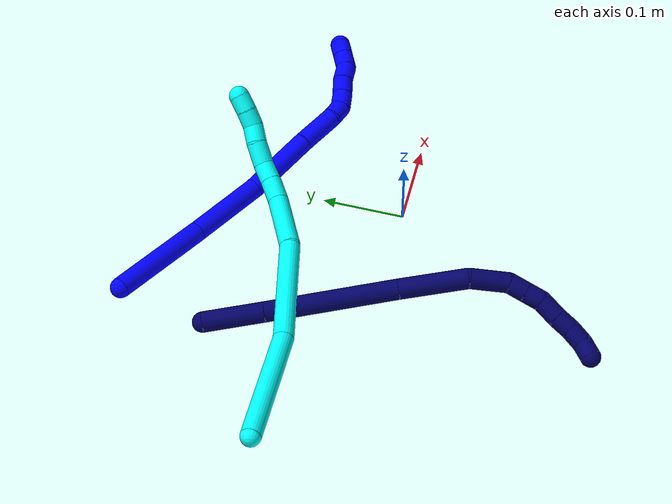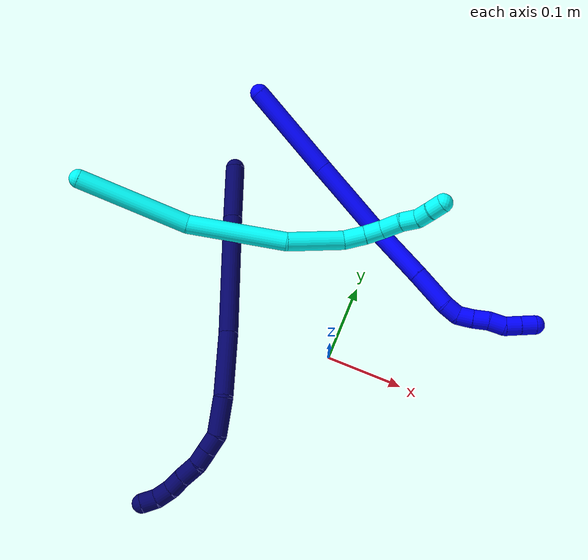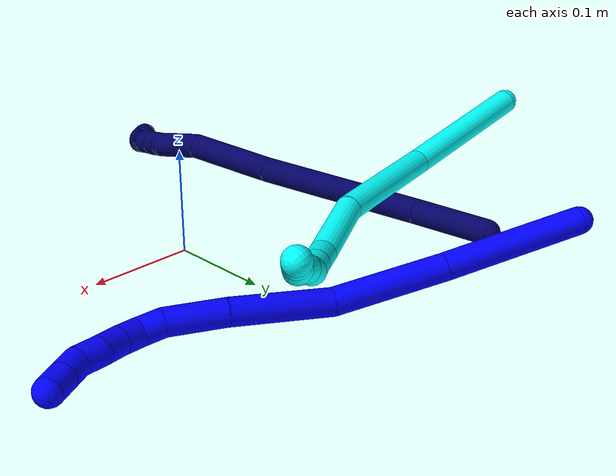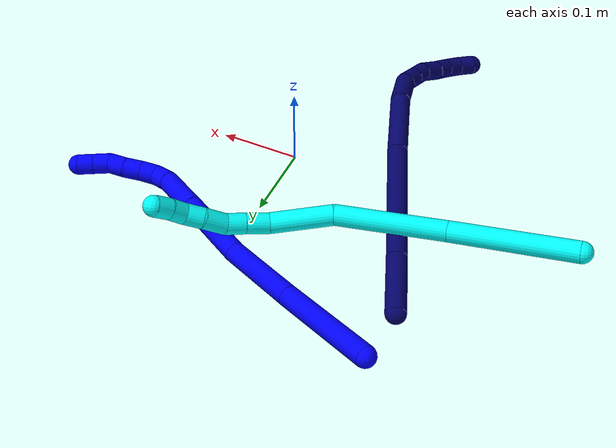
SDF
<sdf version="1.7">
 <world name="default">
  <model name="1">
   <static>0</static>
   <link name="1">
    <collision name="collision-cylinder-e_1_1_4">
     <pose>0.032249 -0.010098 -0.055538 2.96174 0.519046 2.48681</pose>
     <geometry><cylinder><radius>0.0125</radius><length>0.130023</length></cylinder></geometry>
     <surface>
      <friction><ode><mu>1.16</mu><mu2>1.16</mu2><slip1>0</slip1><slip2>0</slip2></ode></friction>
      <contact><ode><kp>1e+06</kp><kd>1</kd><max_vel>0</max_vel><min_depth>0.001</min_depth></ode></contact>
     </surface>
    </collision>
    <visual name="visual-cylinder-e_1_1_4">
     <pose>0.032249 -0.010098 -0.055538 2.96174 0.519046 2.48681</pose>
     <geometry><cylinder><radius>0.0125</radius><length>0.130023</length></cylinder></geometry>
     <material><ambient>0 0 1 1</ambient></material>
    </visual>
    <collision name="collision-cylinder-e_2_4_5">
     <pose>0.088818 -0.029358 -0.155503 2.93822 0.492142 2.36981</pose>
     <geometry><cylinder><radius>0.0125</radius><length>0.102939</length></cylinder></geometry>
     <surface>
      <friction><ode><mu>1.16</mu><mu2>1.16</mu2><slip1>0</slip1><slip2>0</slip2></ode></friction>
      <contact><ode><kp>1e+06</kp><kd>1</kd><max_vel>0</max_vel><min_depth>0.001</min_depth></ode></contact>
     </surface>
    </collision>
    <visual name="visual-cylinder-e_2_4_5">
     <pose>0.088818 -0.029358 -0.155503 2.93822 0.492142 2.36981</pose>
     <geometry><cylinder><radius>0.0125</radius><length>0.102939</length></cylinder></geometry>
     <material><ambient>0 0 1 1</ambient></material>
    </visual>
    <collision name="collision-cylinder-e_3_5_6">
     <pose>0.126631 -0.052566 -0.240502 2.80829 0.304481 1.47895</pose>
     <geometry><cylinder><radius>0.0125</radius><length>0.09001</length></cylinder></geometry>
     <surface>
      <friction><ode><mu>1.16</mu><mu2>1.16</mu2><slip1>0</slip1><slip2>0</slip2></ode></friction>
      <contact><ode><kp>1e+06</kp><kd>1</kd><max_vel>0</max_vel><min_depth>0.001</min_depth></ode></contact>
     </surface>
    </collision>
    <visual name="visual-cylinder-e_3_5_6">
     <pose>0.126631 -0.052566 -0.240502 2.80829 0.304481 1.47895</pose>
     <geometry><cylinder><radius>0.0125</radius><length>0.09001</length></cylinder></geometry>
     <material><ambient>0 0 1 1</ambient></material>
    </visual>
    <collision name="collision-cylinder-e_4_6_7">
     <pose>0.149401 -0.073584 -0.304795 2.85575 0.358994 1.80059</pose>
     <geometry><cylinder><radius>0.0125</radius><length>0.052816</length></cylinder></geometry>
     <surface>
      <friction><ode><mu>1.16</mu><mu2>1.16</mu2><slip1>0</slip1><slip2>0</slip2></ode></friction>
      <contact><ode><kp>1e+06</kp><kd>1</kd><max_vel>0</max_vel><min_depth>0.001</min_depth></ode></contact>
     </surface>
    </collision>
    <visual name="visual-cylinder-e_4_6_7">
     <pose>0.149401 -0.073584 -0.304795 2.85575 0.358994 1.80059</pose>
     <geometry><cylinder><radius>0.0125</radius><length>0.052816</length></cylinder></geometry>
     <material><ambient>0 0 1 1</ambient></material>
    </visual>
    <collision name="collision-cylinder-e_5_7_8">
     <pose>0.164653 -0.083733 -0.336788 2.77488 0.593164 2.05076</pose>
     <geometry><cylinder><radius>0.0125</radius><length>0.021373</length></cylinder></geometry>
     <surface>
      <friction><ode><mu>1.16</mu><mu2>1.16</mu2><slip1>0</slip1><slip2>0</slip2></ode></friction>
      <contact><ode><kp>1e+06</kp><kd>1</kd><max_vel>0</max_vel><min_depth>0.001</min_depth></ode></contact>
     </surface>
    </collision>
    <visual name="visual-cylinder-e_5_7_8">
     <pose>0.164653 -0.083733 -0.336788 2.77488 0.593164 2.05076</pose>
     <geometry><cylinder><radius>0.0125</radius><length>0.021373</length></cylinder></geometry>
     <material><ambient>0 0 1 1</ambient></material>
    </visual>
    <collision name="collision-cylinder-e_6_8_9">
     <pose>0.176046 -0.093928 -0.350155 2.19879 0.558534 1.02489</pose>
     <geometry><cylinder><radius>0.0125</radius><length>0.020455</length></cylinder></geometry>
     <surface>
      <friction><ode><mu>1.16</mu><mu2>1.16</mu2><slip1>0</slip1><slip2>0</slip2></ode></friction>
      <contact><ode><kp>1e+06</kp><kd>1</kd><max_vel>0</max_vel><min_depth>0.001</min_depth></ode></contact>
     </surface>
    </collision>
    <visual name="visual-cylinder-e_6_8_9">
     <pose>0.176046 -0.093928 -0.350155 2.19879 0.558534 1.02489</pose>
     <geometry><cylinder><radius>0.0125</radius><length>0.020455</length></cylinder></geometry>
     <material><ambient>0 0 1 1</ambient></material>
    </visual>
    <collision name="collision-cylinder-e_7_9_10">
     <pose>0.187081 -0.10854 -0.359414 2.07233 0.575223 0.92658</pose>
     <geometry><cylinder><radius>0.0125</radius><length>0.020641</length></cylinder></geometry>
     <surface>
      <friction><ode><mu>1.16</mu><mu2>1.16</mu2><slip1>0</slip1><slip2>0</slip2></ode></friction>
      <contact><ode><kp>1e+06</kp><kd>1</kd><max_vel>0</max_vel><min_depth>0.001</min_depth></ode></contact>
     </surface>
    </collision>
    <visual name="visual-cylinder-e_7_9_10">
     <pose>0.187081 -0.10854 -0.359414 2.07233 0.575223 0.92658</pose>
     <geometry><cylinder><radius>0.0125</radius><length>0.020641</length></cylinder></geometry>
     <material><ambient>0 0 1 1</ambient></material>
    </visual>
    <collision name="collision-cylinder-e_8_10_11">
     <pose>0.198848 -0.122548 -0.369611 2.32548 0.609813 1.25852</pose>
     <geometry><cylinder><radius>0.0125</radius><length>0.021486</length></cylinder></geometry>
     <surface>
      <friction><ode><mu>1.16</mu><mu2>1.16</mu2><slip1>0</slip1><slip2>0</slip2></ode></friction>
      <contact><ode><kp>1e+06</kp><kd>1</kd><max_vel>0</max_vel><min_depth>0.001</min_depth></ode></contact>
     </surface>
    </collision>
    <visual name="visual-cylinder-e_8_10_11">
     <pose>0.198848 -0.122548 -0.369611 2.32548 0.609813 1.25852</pose>
     <geometry><cylinder><radius>0.0125</radius><length>0.021486</length></cylinder></geometry>
     <material><ambient>0 0 1 1</ambient></material>
    </visual>
    <collision name="collision-cylinder-e_9_11_12">
     <pose>0.21184 -0.136151 -0.377579 1.83385 0.743139 0.940828</pose>
     <geometry><cylinder><radius>0.0125</radius><length>0.020216</length></cylinder></geometry>
     <surface>
      <friction><ode><mu>1.16</mu><mu2>1.16</mu2><slip1>0</slip1><slip2>0</slip2></ode></friction>
      <contact><ode><kp>1e+06</kp><kd>1</kd><max_vel>0</max_vel><min_depth>0.001</min_depth></ode></contact>
     </surface>
    </collision>
    <visual name="visual-cylinder-e_9_11_12">
     <pose>0.21184 -0.136151 -0.377579 1.83385 0.743139 0.940828</pose>
     <geometry><cylinder><radius>0.0125</radius><length>0.020216</length></cylinder></geometry>
     <material><ambient>0 0 1 1</ambient></material>
    </visual>
    <collision name="collision-cylinder-e_10_12_2">
     <pose>0.225478 -0.150438 -0.381457 1.83785 0.745704 0.947253</pose>
     <geometry><cylinder><radius>0.0125</radius><length>0.020042</length></cylinder></geometry>
     <surface>
      <friction><ode><mu>1.16</mu><mu2>1.16</mu2><slip1>0</slip1><slip2>0</slip2></ode></friction>
      <contact><ode><kp>1e+06</kp><kd>1</kd><max_vel>0</max_vel><min_depth>0.001</min_depth></ode></contact>
     </surface>
    </collision>
    <visual name="visual-cylinder-e_10_12_2">
     <pose>0.225478 -0.150438 -0.381457 1.83785 0.745704 0.947253</pose>
     <geometry><cylinder><radius>0.0125</radius><length>0.020042</length></cylinder></geometry>
     <material><ambient>0 0 1 1</ambient></material>
    </visual>
    <collision name="collision-sphere-2">
     <pose>0.232277 -0.157539 -0.3834 0 -0 0</pose>
     <geometry><sphere><radius>0.0125</radius></sphere></geometry>
     <surface>
      <friction><ode><mu>1.16</mu><mu2>1.16</mu2><slip1>0</slip1><slip2>0</slip2></ode></friction>
      <contact><ode><kp>1e+06</kp><kd>1</kd><max_vel>0</max_vel><min_depth>0.001</min_depth></ode></contact>
     </surface>
    </collision>
    <visual name="visual-sphere-2">
     <pose>0.232277 -0.157539 -0.3834 0 -0 0</pose>
     <geometry><sphere><radius>0.0125</radius></sphere></geometry>
     <material><ambient>0 0 1 1</ambient></material>
    </visual>
    <collision name="collision-sphere-12">
     <pose>0.218679 -0.143338 -0.379515 0 -0 0</pose>
     <geometry><sphere><radius>0.0125</radius></sphere></geometry>
     <surface>
      <friction><ode><mu>1.16</mu><mu2>1.16</mu2><slip1>0</slip1><slip2>0</slip2></ode></friction>
      <contact><ode><kp>1e+06</kp><kd>1</kd><max_vel>0</max_vel><min_depth>0.001</min_depth></ode></contact>
     </surface>
    </collision>
    <visual name="visual-sphere-12">
     <pose>0.218679 -0.143338 -0.379515 0 -0 0</pose>
     <geometry><sphere><radius>0.0125</radius></sphere></geometry>
     <material><ambient>0 0 1 1</ambient></material>
    </visual>
    <collision name="collision-sphere-11">
     <pose>0.205 -0.128964 -0.375644 0 -0 0</pose>
     <geometry><sphere><radius>0.0125</radius></sphere></geometry>
     <surface>
      <friction><ode><mu>1.16</mu><mu2>1.16</mu2><slip1>0</slip1><slip2>0</slip2></ode></friction>
      <contact><ode><kp>1e+06</kp><kd>1</kd><max_vel>0</max_vel><min_depth>0.001</min_depth></ode></contact>
     </surface>
    </collision>
    <visual name="visual-sphere-11">
     <pose>0.205 -0.128964 -0.375644 0 -0 0</pose>
     <geometry><sphere><radius>0.0125</radius></sphere></geometry>
     <material><ambient>0 0 1 1</ambient></material>
    </visual>
    <collision name="collision-sphere-10">
     <pose>0.192695 -0.116133 -0.363578 0 -0 0</pose>
     <geometry><sphere><radius>0.0125</radius></sphere></geometry>
     <surface>
      <friction><ode><mu>1.16</mu><mu2>1.16</mu2><slip1>0</slip1><slip2>0</slip2></ode></friction>
      <contact><ode><kp>1e+06</kp><kd>1</kd><max_vel>0</max_vel><min_depth>0.001</min_depth></ode></contact>
     </surface>
    </collision>
    <visual name="visual-sphere-10">
     <pose>0.192695 -0.116133 -0.363578 0 -0 0</pose>
     <geometry><sphere><radius>0.0125</radius></sphere></geometry>
     <material><ambient>0 0 1 1</ambient></material>
    </visual>
    <collision name="collision-sphere-9">
     <pose>0.181466 -0.100947 -0.355251 0 -0 0</pose>
     <geometry><sphere><radius>0.0125</radius></sphere></geometry>
     <surface>
      <friction><ode><mu>1.16</mu><mu2>1.16</mu2><slip1>0</slip1><slip2>0</slip2></ode></friction>
      <contact><ode><kp>1e+06</kp><kd>1</kd><max_vel>0</max_vel><min_depth>0.001</min_depth></ode></contact>
     </surface>
    </collision>
    <visual name="visual-sphere-9">
     <pose>0.181466 -0.100947 -0.355251 0 -0 0</pose>
     <geometry><sphere><radius>0.0125</radius></sphere></geometry>
     <material><ambient>0 0 1 1</ambient></material>
    </visual>
    <collision name="collision-sphere-4">
     <pose>0.064498 -0.020196 -0.111077 0 -0 0</pose>
     <geometry><sphere><radius>0.0125</radius></sphere></geometry>
     <surface>
      <friction><ode><mu>1.16</mu><mu2>1.16</mu2><slip1>0</slip1><slip2>0</slip2></ode></friction>
      <contact><ode><kp>1e+06</kp><kd>1</kd><max_vel>0</max_vel><min_depth>0.001</min_depth></ode></contact>
     </surface>
    </collision>
    <visual name="visual-sphere-4">
     <pose>0.064498 -0.020196 -0.111077 0 -0 0</pose>
     <geometry><sphere><radius>0.0125</radius></sphere></geometry>
     <material><ambient>0 0 1 1</ambient></material>
    </visual>
    <collision name="collision-sphere-1">
     <geometry><sphere><radius>0.0125</radius></sphere></geometry>
     <surface>
      <friction><ode><mu>1.16</mu><mu2>1.16</mu2><slip1>0</slip1><slip2>0</slip2></ode></friction>
      <contact><ode><kp>1e+06</kp><kd>1</kd><max_vel>0</max_vel><min_depth>0.001</min_depth></ode></contact>
     </surface>
    </collision>
    <visual name="visual-sphere-1">
     <geometry><sphere><radius>0.0125</radius></sphere></geometry>
     <material><ambient>0 0 1 1</ambient></material>
    </visual>
    <collision name="collision-sphere-8">
     <pose>0.170626 -0.08691 -0.34506 0 -0 0</pose>
     <geometry><sphere><radius>0.0125</radius></sphere></geometry>
     <surface>
      <friction><ode><mu>1.16</mu><mu2>1.16</mu2><slip1>0</slip1><slip2>0</slip2></ode></friction>
      <contact><ode><kp>1e+06</kp><kd>1</kd><max_vel>0</max_vel><min_depth>0.001</min_depth></ode></contact>
     </surface>
    </collision>
    <visual name="visual-sphere-8">
     <pose>0.170626 -0.08691 -0.34506 0 -0 0</pose>
     <geometry><sphere><radius>0.0125</radius></sphere></geometry>
     <material><ambient>0 0 1 1</ambient></material>
    </visual>
    <collision name="collision-sphere-5">
     <pose>0.113138 -0.038519 -0.19993 0 -0 0</pose>
     <geometry><sphere><radius>0.0125</radius></sphere></geometry>
     <surface>
      <friction><ode><mu>1.16</mu><mu2>1.16</mu2><slip1>0</slip1><slip2>0</slip2></ode></friction>
      <contact><ode><kp>1e+06</kp><kd>1</kd><max_vel>0</max_vel><min_depth>0.001</min_depth></ode></contact>
     </surface>
    </collision>
    <visual name="visual-sphere-5">
     <pose>0.113138 -0.038519 -0.19993 0 -0 0</pose>
     <geometry><sphere><radius>0.0125</radius></sphere></geometry>
     <material><ambient>0 0 1 1</ambient></material>
    </visual>
    <collision name="collision-sphere-6">
     <pose>0.140123 -0.066613 -0.281074 0 -0 0</pose>
     <geometry><sphere><radius>0.0125</radius></sphere></geometry>
     <surface>
      <friction><ode><mu>1.16</mu><mu2>1.16</mu2><slip1>0</slip1><slip2>0</slip2></ode></friction>
      <contact><ode><kp>1e+06</kp><kd>1</kd><max_vel>0</max_vel><min_depth>0.001</min_depth></ode></contact>
     </surface>
    </collision>
    <visual name="visual-sphere-6">
     <pose>0.140123 -0.066613 -0.281074 0 -0 0</pose>
     <geometry><sphere><radius>0.0125</radius></sphere></geometry>
     <material><ambient>0 0 1 1</ambient></material>
    </visual>
    <collision name="collision-sphere-7">
     <pose>0.158679 -0.080556 -0.328516 0 -0 0</pose>
     <geometry><sphere><radius>0.0125</radius></sphere></geometry>
     <surface>
      <friction><ode><mu>1.16</mu><mu2>1.16</mu2><slip1>0</slip1><slip2>0</slip2></ode></friction>
      <contact><ode><kp>1e+06</kp><kd>1</kd><max_vel>0</max_vel><min_depth>0.001</min_depth></ode></contact>
     </surface>
    </collision>
    <visual name="visual-sphere-7">
     <pose>0.158679 -0.080556 -0.328516 0 -0 0</pose>
     <geometry><sphere><radius>0.0125</radius></sphere></geometry>
     <material><ambient>0 0 1 1</ambient></material>
    </visual>
    <inertial>
     <pose>0.113361 -0.054609 -0.211946 0 -0 0</pose>
     <mass>0.5</mass>
     <inertia>
      <ixx>7.2e-05</ixx>
      <ixy>0</ixy>
      <ixz>0</ixz>
      <iyy>0.000464</iyy>
      <iyz>0</iyz>
      <izz>-0.000122</izz>
     </inertia>
    </inertial>
   </link>
   <pose>-0.215986 0.28825 0.054127 -1.72462 0.873658 0.527533</pose>
  </model>
  <model name="3">
   <static>0</static>
   <link name="3">
    <collision name="collision-cylinder-e_1_1_4">
     <pose>0.000195 -0.006128 -0.074844 3.0599 0.002603 0.063677</pose>
     <geometry><cylinder><radius>0.0125</radius><length>0.15019</length></cylinder></geometry>
     <surface>
      <friction><ode><mu>1.16</mu><mu2>1.16</mu2><slip1>0</slip1><slip2>0</slip2></ode></friction>
      <contact><ode><kp>1e+06</kp><kd>1</kd><max_vel>0</max_vel><min_depth>0.001</min_depth></ode></contact>
     </surface>
    </collision>
    <visual name="visual-cylinder-e_1_1_4">
     <pose>0.000195 -0.006128 -0.074844 3.0599 0.002603 0.063677</pose>
     <geometry><cylinder><radius>0.0125</radius><length>0.15019</length></cylinder></geometry>
     <material><ambient>0.003922 1 0.996078 1</ambient></material>
    </visual>
    <collision name="collision-cylinder-e_2_4_5">
     <pose>0.015043 -0.010166 -0.213482 -3.10885 0.225639 -2.85458</pose>
     <geometry><cylinder><radius>0.0125</radius><length>0.130976</length></cylinder></geometry>
     <surface>
      <friction><ode><mu>1.16</mu><mu2>1.16</mu2><slip1>0</slip1><slip2>0</slip2></ode></friction>
      <contact><ode><kp>1e+06</kp><kd>1</kd><max_vel>0</max_vel><min_depth>0.001</min_depth></ode></contact>
     </surface>
    </collision>
    <visual name="visual-cylinder-e_2_4_5">
     <pose>0.015043 -0.010166 -0.213482 -3.10885 0.225639 -2.85458</pose>
     <geometry><cylinder><radius>0.0125</radius><length>0.130976</length></cylinder></geometry>
     <material><ambient>0.003922 1 0.996078 1</ambient></material>
    </visual>
    <collision name="collision-cylinder-e_3_5_6">
     <pose>0.036055 0.00338 -0.312587 -2.82785 0.16969 -0.986697</pose>
     <geometry><cylinder><radius>0.0125</radius><length>0.075328</length></cylinder></geometry>
     <surface>
      <friction><ode><mu>1.16</mu><mu2>1.16</mu2><slip1>0</slip1><slip2>0</slip2></ode></friction>
      <contact><ode><kp>1e+06</kp><kd>1</kd><max_vel>0</max_vel><min_depth>0.001</min_depth></ode></contact>
     </surface>
    </collision>
    <visual name="visual-cylinder-e_3_5_6">
     <pose>0.036055 0.00338 -0.312587 -2.82785 0.16969 -0.986697</pose>
     <geometry><cylinder><radius>0.0125</radius><length>0.075328</length></cylinder></geometry>
     <material><ambient>0.003922 1 0.996078 1</ambient></material>
    </visual>
    <collision name="collision-cylinder-e_4_6_7">
     <pose>0.049287 0.019445 -0.359772 -2.77143 0.494771 -1.86576</pose>
     <geometry><cylinder><radius>0.0125</radius><length>0.028945</length></cylinder></geometry>
     <surface>
      <friction><ode><mu>1.16</mu><mu2>1.16</mu2><slip1>0</slip1><slip2>0</slip2></ode></friction>
      <contact><ode><kp>1e+06</kp><kd>1</kd><max_vel>0</max_vel><min_depth>0.001</min_depth></ode></contact>
     </surface>
    </collision>
    <visual name="visual-cylinder-e_4_6_7">
     <pose>0.049287 0.019445 -0.359772 -2.77143 0.494771 -1.86576</pose>
     <geometry><cylinder><radius>0.0125</radius><length>0.028945</length></cylinder></geometry>
     <material><ambient>0.003922 1 0.996078 1</ambient></material>
    </visual>
    <collision name="collision-cylinder-e_5_7_8">
     <pose>0.06229 0.028352 -0.380814 -2.70305 0.544442 -1.79415</pose>
     <geometry><cylinder><radius>0.0125</radius><length>0.023674</length></cylinder></geometry>
     <surface>
      <friction><ode><mu>1.16</mu><mu2>1.16</mu2><slip1>0</slip1><slip2>0</slip2></ode></friction>
      <contact><ode><kp>1e+06</kp><kd>1</kd><max_vel>0</max_vel><min_depth>0.001</min_depth></ode></contact>
     </surface>
    </collision>
    <visual name="visual-cylinder-e_5_7_8">
     <pose>0.06229 0.028352 -0.380814 -2.70305 0.544442 -1.79415</pose>
     <geometry><cylinder><radius>0.0125</radius><length>0.023674</length></cylinder></geometry>
     <material><ambient>0.003922 1 0.996078 1</ambient></material>
    </visual>
    <collision name="collision-cylinder-e_6_8_9">
     <pose>0.079318 0.035052 -0.398754 -2.87446 0.875307 -2.58233</pose>
     <geometry><cylinder><radius>0.0125</radius><length>0.028387</length></cylinder></geometry>
     <surface>
      <friction><ode><mu>1.16</mu><mu2>1.16</mu2><slip1>0</slip1><slip2>0</slip2></ode></friction>
      <contact><ode><kp>1e+06</kp><kd>1</kd><max_vel>0</max_vel><min_depth>0.001</min_depth></ode></contact>
     </surface>
    </collision>
    <visual name="visual-cylinder-e_6_8_9">
     <pose>0.079318 0.035052 -0.398754 -2.87446 0.875307 -2.58233</pose>
     <geometry><cylinder><radius>0.0125</radius><length>0.028387</length></cylinder></geometry>
     <material><ambient>0.003922 1 0.996078 1</ambient></material>
    </visual>
    <collision name="collision-cylinder-e_7_9_10">
     <pose>0.097423 0.038885 -0.415951 -2.97324 0.700629 -2.68771</pose>
     <geometry><cylinder><radius>0.0125</radius><length>0.022359</length></cylinder></geometry>
     <surface>
      <friction><ode><mu>1.16</mu><mu2>1.16</mu2><slip1>0</slip1><slip2>0</slip2></ode></friction>
      <contact><ode><kp>1e+06</kp><kd>1</kd><max_vel>0</max_vel><min_depth>0.001</min_depth></ode></contact>
     </surface>
    </collision>
    <visual name="visual-cylinder-e_7_9_10">
     <pose>0.097423 0.038885 -0.415951 -2.97324 0.700629 -2.68771</pose>
     <geometry><cylinder><radius>0.0125</radius><length>0.022359</length></cylinder></geometry>
     <material><ambient>0.003922 1 0.996078 1</ambient></material>
    </visual>
    <collision name="collision-cylinder-e_8_10_11">
     <pose>0.11341 0.042269 -0.428884 -2.73296 1.06076 -2.46229</pose>
     <geometry><cylinder><radius>0.0125</radius><length>0.02012</length></cylinder></geometry>
     <surface>
      <friction><ode><mu>1.16</mu><mu2>1.16</mu2><slip1>0</slip1><slip2>0</slip2></ode></friction>
      <contact><ode><kp>1e+06</kp><kd>1</kd><max_vel>0</max_vel><min_depth>0.001</min_depth></ode></contact>
     </surface>
    </collision>
    <visual name="visual-cylinder-e_8_10_11">
     <pose>0.11341 0.042269 -0.428884 -2.73296 1.06076 -2.46229</pose>
     <geometry><cylinder><radius>0.0125</radius><length>0.02012</length></cylinder></geometry>
     <material><ambient>0.003922 1 0.996078 1</ambient></material>
    </visual>
    <collision name="collision-cylinder-e_9_11_2">
     <pose>0.130461 0.04707 -0.438254 -2.6115 0.972602 -2.1929</pose>
     <geometry><cylinder><radius>0.0125</radius><length>0.02002</length></cylinder></geometry>
     <surface>
      <friction><ode><mu>1.16</mu><mu2>1.16</mu2><slip1>0</slip1><slip2>0</slip2></ode></friction>
      <contact><ode><kp>1e+06</kp><kd>1</kd><max_vel>0</max_vel><min_depth>0.001</min_depth></ode></contact>
     </surface>
    </collision>
    <visual name="visual-cylinder-e_9_11_2">
     <pose>0.130461 0.04707 -0.438254 -2.6115 0.972602 -2.1929</pose>
     <geometry><cylinder><radius>0.0125</radius><length>0.02002</length></cylinder></geometry>
     <material><ambient>0.003922 1 0.996078 1</ambient></material>
    </visual>
    <collision name="collision-sphere-2">
     <pose>0.138733 0.049921 -0.443118 0 -0 0</pose>
     <geometry><sphere><radius>0.0125</radius></sphere></geometry>
     <surface>
      <friction><ode><mu>1.16</mu><mu2>1.16</mu2><slip1>0</slip1><slip2>0</slip2></ode></friction>
      <contact><ode><kp>1e+06</kp><kd>1</kd><max_vel>0</max_vel><min_depth>0.001</min_depth></ode></contact>
     </surface>
    </collision>
    <visual name="visual-sphere-2">
     <pose>0.138733 0.049921 -0.443118 0 -0 0</pose>
     <geometry><sphere><radius>0.0125</radius></sphere></geometry>
     <material><ambient>0.003922 1 0.996078 1</ambient></material>
    </visual>
    <collision name="collision-sphere-11">
     <pose>0.12219 0.04422 -0.433391 0 -0 0</pose>
     <geometry><sphere><radius>0.0125</radius></sphere></geometry>
     <surface>
      <friction><ode><mu>1.16</mu><mu2>1.16</mu2><slip1>0</slip1><slip2>0</slip2></ode></friction>
      <contact><ode><kp>1e+06</kp><kd>1</kd><max_vel>0</max_vel><min_depth>0.001</min_depth></ode></contact>
     </surface>
    </collision>
    <visual name="visual-sphere-11">
     <pose>0.12219 0.04422 -0.433391 0 -0 0</pose>
     <geometry><sphere><radius>0.0125</radius></sphere></geometry>
     <material><ambient>0.003922 1 0.996078 1</ambient></material>
    </visual>
    <collision name="collision-sphere-10">
     <pose>0.10463 0.040317 -0.424376 0 -0 0</pose>
     <geometry><sphere><radius>0.0125</radius></sphere></geometry>
     <surface>
      <friction><ode><mu>1.16</mu><mu2>1.16</mu2><slip1>0</slip1><slip2>0</slip2></ode></friction>
      <contact><ode><kp>1e+06</kp><kd>1</kd><max_vel>0</max_vel><min_depth>0.001</min_depth></ode></contact>
     </surface>
    </collision>
    <visual name="visual-sphere-10">
     <pose>0.10463 0.040317 -0.424376 0 -0 0</pose>
     <geometry><sphere><radius>0.0125</radius></sphere></geometry>
     <material><ambient>0.003922 1 0.996078 1</ambient></material>
    </visual>
    <collision name="collision-sphere-9">
     <pose>0.090215 0.037453 -0.407526 0 -0 0</pose>
     <geometry><sphere><radius>0.0125</radius></sphere></geometry>
     <surface>
      <friction><ode><mu>1.16</mu><mu2>1.16</mu2><slip1>0</slip1><slip2>0</slip2></ode></friction>
      <contact><ode><kp>1e+06</kp><kd>1</kd><max_vel>0</max_vel><min_depth>0.001</min_depth></ode></contact>
     </surface>
    </collision>
    <visual name="visual-sphere-9">
     <pose>0.090215 0.037453 -0.407526 0 -0 0</pose>
     <geometry><sphere><radius>0.0125</radius></sphere></geometry>
     <material><ambient>0.003922 1 0.996078 1</ambient></material>
    </visual>
    <collision name="collision-sphere-4">
     <pose>0.000391 -0.012256 -0.149688 0 -0 0</pose>
     <geometry><sphere><radius>0.0125</radius></sphere></geometry>
     <surface>
      <friction><ode><mu>1.16</mu><mu2>1.16</mu2><slip1>0</slip1><slip2>0</slip2></ode></friction>
      <contact><ode><kp>1e+06</kp><kd>1</kd><max_vel>0</max_vel><min_depth>0.001</min_depth></ode></contact>
     </surface>
    </collision>
    <visual name="visual-sphere-4">
     <pose>0.000391 -0.012256 -0.149688 0 -0 0</pose>
     <geometry><sphere><radius>0.0125</radius></sphere></geometry>
     <material><ambient>0.003922 1 0.996078 1</ambient></material>
    </visual>
    <collision name="collision-sphere-1">
     <geometry><sphere><radius>0.0125</radius></sphere></geometry>
     <surface>
      <friction><ode><mu>1.16</mu><mu2>1.16</mu2><slip1>0</slip1><slip2>0</slip2></ode></friction>
      <contact><ode><kp>1e+06</kp><kd>1</kd><max_vel>0</max_vel><min_depth>0.001</min_depth></ode></contact>
     </surface>
    </collision>
    <visual name="visual-sphere-1">
     <geometry><sphere><radius>0.0125</radius></sphere></geometry>
     <material><ambient>0.003922 1 0.996078 1</ambient></material>
    </visual>
    <collision name="collision-sphere-8">
     <pose>0.068421 0.032652 -0.389982 0 -0 0</pose>
     <geometry><sphere><radius>0.0125</radius></sphere></geometry>
     <surface>
      <friction><ode><mu>1.16</mu><mu2>1.16</mu2><slip1>0</slip1><slip2>0</slip2></ode></friction>
      <contact><ode><kp>1e+06</kp><kd>1</kd><max_vel>0</max_vel><min_depth>0.001</min_depth></ode></contact>
     </surface>
    </collision>
    <visual name="visual-sphere-8">
     <pose>0.068421 0.032652 -0.389982 0 -0 0</pose>
     <geometry><sphere><radius>0.0125</radius></sphere></geometry>
     <material><ambient>0.003922 1 0.996078 1</ambient></material>
    </visual>
    <collision name="collision-sphere-5">
     <pose>0.029694 -0.008077 -0.277276 0 -0 0</pose>
     <geometry><sphere><radius>0.0125</radius></sphere></geometry>
     <surface>
      <friction><ode><mu>1.16</mu><mu2>1.16</mu2><slip1>0</slip1><slip2>0</slip2></ode></friction>
      <contact><ode><kp>1e+06</kp><kd>1</kd><max_vel>0</max_vel><min_depth>0.001</min_depth></ode></contact>
     </surface>
    </collision>
    <visual name="visual-sphere-5">
     <pose>0.029694 -0.008077 -0.277276 0 -0 0</pose>
     <geometry><sphere><radius>0.0125</radius></sphere></geometry>
     <material><ambient>0.003922 1 0.996078 1</ambient></material>
    </visual>
    <collision name="collision-sphere-6">
     <pose>0.042415 0.014837 -0.347898 0 -0 0</pose>
     <geometry><sphere><radius>0.0125</radius></sphere></geometry>
     <surface>
      <friction><ode><mu>1.16</mu><mu2>1.16</mu2><slip1>0</slip1><slip2>0</slip2></ode></friction>
      <contact><ode><kp>1e+06</kp><kd>1</kd><max_vel>0</max_vel><min_depth>0.001</min_depth></ode></contact>
     </surface>
    </collision>
    <visual name="visual-sphere-6">
     <pose>0.042415 0.014837 -0.347898 0 -0 0</pose>
     <geometry><sphere><radius>0.0125</radius></sphere></geometry>
     <material><ambient>0.003922 1 0.996078 1</ambient></material>
    </visual>
    <collision name="collision-sphere-7">
     <pose>0.056159 0.024053 -0.371647 0 -0 0</pose>
     <geometry><sphere><radius>0.0125</radius></sphere></geometry>
     <surface>
      <friction><ode><mu>1.16</mu><mu2>1.16</mu2><slip1>0</slip1><slip2>0</slip2></ode></friction>
      <contact><ode><kp>1e+06</kp><kd>1</kd><max_vel>0</max_vel><min_depth>0.001</min_depth></ode></contact>
     </surface>
    </collision>
    <visual name="visual-sphere-7">
     <pose>0.056159 0.024053 -0.371647 0 -0 0</pose>
     <geometry><sphere><radius>0.0125</radius></sphere></geometry>
     <material><ambient>0.003922 1 0.996078 1</ambient></material>
    </visual>
    <inertial>
     <pose>0.033881 0.005788 -0.240401 0 -0 0</pose>
     <mass>0.5</mass>
     <inertia>
      <ixx>6.1e-05</ixx>
      <ixy>0</ixy>
      <ixz>0</ixz>
      <iyy>-0.000181</iyy>
      <iyz>0</iyz>
      <izz>-9.1e-05</izz>
     </inertia>
    </inertial>
   </link>
   <pose>-0.380052 0.081928 0.078475 -0.975523 -1.15866 1.12043</pose>
  </model>
  <model name="7">
   <static>0</static>
   <link name="7">
    <collision name="collision-cylinder-e_1_1_4">
     <pose>-0.011383 -0.022196 0.027636 0.676653 -0.310731 -0.110109</pose>
     <geometry><cylinder><radius>0.0125</radius><length>0.074457</length></cylinder></geometry>
     <surface>
      <friction><ode><mu>1.16</mu><mu2>1.16</mu2><slip1>0</slip1><slip2>0</slip2></ode></friction>
      <contact><ode><kp>1e+06</kp><kd>1</kd><max_vel>0</max_vel><min_depth>0.001</min_depth></ode></contact>
     </surface>
    </collision>
    <visual name="visual-cylinder-e_1_1_4">
     <pose>-0.011383 -0.022196 0.027636 0.676653 -0.310731 -0.110109</pose>
     <geometry><cylinder><radius>0.0125</radius><length>0.074457</length></cylinder></geometry>
     <material><ambient>0.003922 0 0.403922 1</ambient></material>
    </visual>
    <collision name="collision-cylinder-e_2_4_5">
     <pose>-0.046919 -0.091644 0.115647 0.664079 -0.305199 -0.10596</pose>
     <geometry><cylinder><radius>0.0125</radius><length>0.160765</length></cylinder></geometry>
     <surface>
      <friction><ode><mu>1.16</mu><mu2>1.16</mu2><slip1>0</slip1><slip2>0</slip2></ode></friction>
      <contact><ode><kp>1e+06</kp><kd>1</kd><max_vel>0</max_vel><min_depth>0.001</min_depth></ode></contact>
     </surface>
    </collision>
    <visual name="visual-cylinder-e_2_4_5">
     <pose>-0.046919 -0.091644 0.115647 0.664079 -0.305199 -0.10596</pose>
     <geometry><cylinder><radius>0.0125</radius><length>0.160765</length></cylinder></geometry>
     <material><ambient>0.003922 0 0.403922 1</ambient></material>
    </visual>
    <collision name="collision-cylinder-e_3_5_6">
     <pose>-0.084782 -0.164661 0.206161 0.707289 -0.33288 -0.123876</pose>
     <geometry><cylinder><radius>0.0125</radius><length>0.083907</length></cylinder></geometry>
     <surface>
      <friction><ode><mu>1.16</mu><mu2>1.16</mu2><slip1>0</slip1><slip2>0</slip2></ode></friction>
      <contact><ode><kp>1e+06</kp><kd>1</kd><max_vel>0</max_vel><min_depth>0.001</min_depth></ode></contact>
     </surface>
    </collision>
    <visual name="visual-cylinder-e_3_5_6">
     <pose>-0.084782 -0.164661 0.206161 0.707289 -0.33288 -0.123876</pose>
     <geometry><cylinder><radius>0.0125</radius><length>0.083907</length></cylinder></geometry>
     <material><ambient>0.003922 0 0.403922 1</ambient></material>
    </visual>
    <collision name="collision-cylinder-e_4_6_7">
     <pose>-0.098918 -0.207597 0.253145 0.795041 -0.017752 -0.007454</pose>
     <geometry><cylinder><radius>0.0125</radius><length>0.048116</length></cylinder></geometry>
     <surface>
      <friction><ode><mu>1.16</mu><mu2>1.16</mu2><slip1>0</slip1><slip2>0</slip2></ode></friction>
      <contact><ode><kp>1e+06</kp><kd>1</kd><max_vel>0</max_vel><min_depth>0.001</min_depth></ode></contact>
     </surface>
    </collision>
    <visual name="visual-cylinder-e_4_6_7">
     <pose>-0.098918 -0.207597 0.253145 0.795041 -0.017752 -0.007454</pose>
     <geometry><cylinder><radius>0.0125</radius><length>0.048116</length></cylinder></geometry>
     <material><ambient>0.003922 0 0.403922 1</ambient></material>
    </visual>
    <collision name="collision-cylinder-e_5_7_8">
     <pose>-0.098064 -0.235272 0.273929 1.21186 0.113748 0.078858</pose>
     <geometry><cylinder><radius>0.0125</radius><length>0.022581</length></cylinder></geometry>
     <surface>
      <friction><ode><mu>1.16</mu><mu2>1.16</mu2><slip1>0</slip1><slip2>0</slip2></ode></friction>
      <contact><ode><kp>1e+06</kp><kd>1</kd><max_vel>0</max_vel><min_depth>0.001</min_depth></ode></contact>
     </surface>
    </collision>
    <visual name="visual-cylinder-e_5_7_8">
     <pose>-0.098064 -0.235272 0.273929 1.21186 0.113748 0.078858</pose>
     <geometry><cylinder><radius>0.0125</radius><length>0.022581</length></cylinder></geometry>
     <material><ambient>0.003922 0 0.403922 1</ambient></material>
    </visual>
    <collision name="collision-cylinder-e_6_8_9">
     <pose>-0.095809 -0.255661 0.281496 1.21925 0.092163 0.064387</pose>
     <geometry><cylinder><radius>0.0125</radius><length>0.021152</length></cylinder></geometry>
     <surface>
      <friction><ode><mu>1.16</mu><mu2>1.16</mu2><slip1>0</slip1><slip2>0</slip2></ode></friction>
      <contact><ode><kp>1e+06</kp><kd>1</kd><max_vel>0</max_vel><min_depth>0.001</min_depth></ode></contact>
     </surface>
    </collision>
    <visual name="visual-cylinder-e_6_8_9">
     <pose>-0.095809 -0.255661 0.281496 1.21925 0.092163 0.064387</pose>
     <geometry><cylinder><radius>0.0125</radius><length>0.021152</length></cylinder></geometry>
     <material><ambient>0.003922 0 0.403922 1</ambient></material>
    </visual>
    <collision name="collision-cylinder-e_7_9_10">
     <pose>-0.091418 -0.277999 0.286245 1.48087 0.266836 0.244097</pose>
     <geometry><cylinder><radius>0.0125</radius><length>0.025919</length></cylinder></geometry>
     <surface>
      <friction><ode><mu>1.16</mu><mu2>1.16</mu2><slip1>0</slip1><slip2>0</slip2></ode></friction>
      <contact><ode><kp>1e+06</kp><kd>1</kd><max_vel>0</max_vel><min_depth>0.001</min_depth></ode></contact>
     </surface>
    </collision>
    <visual name="visual-cylinder-e_7_9_10">
     <pose>-0.091418 -0.277999 0.286245 1.48087 0.266836 0.244097</pose>
     <geometry><cylinder><radius>0.0125</radius><length>0.025919</length></cylinder></geometry>
     <material><ambient>0.003922 0 0.403922 1</ambient></material>
    </visual>
    <collision name="collision-cylinder-e_8_10_11">
     <pose>-0.085555 -0.300789 0.289121 1.40281 0.229127 0.193785</pose>
     <geometry><cylinder><radius>0.0125</radius><length>0.021538</length></cylinder></geometry>
     <surface>
      <friction><ode><mu>1.16</mu><mu2>1.16</mu2><slip1>0</slip1><slip2>0</slip2></ode></friction>
      <contact><ode><kp>1e+06</kp><kd>1</kd><max_vel>0</max_vel><min_depth>0.001</min_depth></ode></contact>
     </surface>
    </collision>
    <visual name="visual-cylinder-e_8_10_11">
     <pose>-0.085555 -0.300789 0.289121 1.40281 0.229127 0.193785</pose>
     <geometry><cylinder><radius>0.0125</radius><length>0.021538</length></cylinder></geometry>
     <material><ambient>0.003922 0 0.403922 1</ambient></material>
    </visual>
    <collision name="collision-cylinder-e_9_11_12">
     <pose>-0.081327 -0.321665 0.290494 1.60687 0.167475 0.173597</pose>
     <geometry><cylinder><radius>0.0125</radius><length>0.021383</length></cylinder></geometry>
     <surface>
      <friction><ode><mu>1.16</mu><mu2>1.16</mu2><slip1>0</slip1><slip2>0</slip2></ode></friction>
      <contact><ode><kp>1e+06</kp><kd>1</kd><max_vel>0</max_vel><min_depth>0.001</min_depth></ode></contact>
     </surface>
    </collision>
    <visual name="visual-cylinder-e_9_11_12">
     <pose>-0.081327 -0.321665 0.290494 1.60687 0.167475 0.173597</pose>
     <geometry><cylinder><radius>0.0125</radius><length>0.021383</length></cylinder></geometry>
     <material><ambient>0.003922 0 0.403922 1</ambient></material>
    </visual>
    <collision name="collision-cylinder-e_10_12_2">
     <pose>-0.078706 -0.341757 0.286986 1.88707 0.083167 0.114664</pose>
     <geometry><cylinder><radius>0.0125</radius><length>0.020181</length></cylinder></geometry>
     <surface>
      <friction><ode><mu>1.16</mu><mu2>1.16</mu2><slip1>0</slip1><slip2>0</slip2></ode></friction>
      <contact><ode><kp>1e+06</kp><kd>1</kd><max_vel>0</max_vel><min_depth>0.001</min_depth></ode></contact>
     </surface>
    </collision>
    <visual name="visual-cylinder-e_10_12_2">
     <pose>-0.078706 -0.341757 0.286986 1.88707 0.083167 0.114664</pose>
     <geometry><cylinder><radius>0.0125</radius><length>0.020181</length></cylinder></geometry>
     <material><ambient>0.003922 0 0.403922 1</ambient></material>
    </visual>
    <collision name="collision-sphere-2">
     <pose>-0.077868 -0.351314 0.283859 0 -0 0</pose>
     <geometry><sphere><radius>0.0125</radius></sphere></geometry>
     <surface>
      <friction><ode><mu>1.16</mu><mu2>1.16</mu2><slip1>0</slip1><slip2>0</slip2></ode></friction>
      <contact><ode><kp>1e+06</kp><kd>1</kd><max_vel>0</max_vel><min_depth>0.001</min_depth></ode></contact>
     </surface>
    </collision>
    <visual name="visual-sphere-2">
     <pose>-0.077868 -0.351314 0.283859 0 -0 0</pose>
     <geometry><sphere><radius>0.0125</radius></sphere></geometry>
     <material><ambient>0.003922 0 0.403922 1</ambient></material>
    </visual>
    <collision name="collision-sphere-12">
     <pose>-0.079545 -0.3322 0.290114 0 -0 0</pose>
     <geometry><sphere><radius>0.0125</radius></sphere></geometry>
     <surface>
      <friction><ode><mu>1.16</mu><mu2>1.16</mu2><slip1>0</slip1><slip2>0</slip2></ode></friction>
      <contact><ode><kp>1e+06</kp><kd>1</kd><max_vel>0</max_vel><min_depth>0.001</min_depth></ode></contact>
     </surface>
    </collision>
    <visual name="visual-sphere-12">
     <pose>-0.079545 -0.3322 0.290114 0 -0 0</pose>
     <geometry><sphere><radius>0.0125</radius></sphere></geometry>
     <material><ambient>0.003922 0 0.403922 1</ambient></material>
    </visual>
    <collision name="collision-sphere-11">
     <pose>-0.083109 -0.31113 0.290874 0 -0 0</pose>
     <geometry><sphere><radius>0.0125</radius></sphere></geometry>
     <surface>
      <friction><ode><mu>1.16</mu><mu2>1.16</mu2><slip1>0</slip1><slip2>0</slip2></ode></friction>
      <contact><ode><kp>1e+06</kp><kd>1</kd><max_vel>0</max_vel><min_depth>0.001</min_depth></ode></contact>
     </surface>
    </collision>
    <visual name="visual-sphere-11">
     <pose>-0.083109 -0.31113 0.290874 0 -0 0</pose>
     <geometry><sphere><radius>0.0125</radius></sphere></geometry>
     <material><ambient>0.003922 0 0.403922 1</ambient></material>
    </visual>
    <collision name="collision-sphere-10">
     <pose>-0.088001 -0.290449 0.287367 0 -0 0</pose>
     <geometry><sphere><radius>0.0125</radius></sphere></geometry>
     <surface>
      <friction><ode><mu>1.16</mu><mu2>1.16</mu2><slip1>0</slip1><slip2>0</slip2></ode></friction>
      <contact><ode><kp>1e+06</kp><kd>1</kd><max_vel>0</max_vel><min_depth>0.001</min_depth></ode></contact>
     </surface>
    </collision>
    <visual name="visual-sphere-10">
     <pose>-0.088001 -0.290449 0.287367 0 -0 0</pose>
     <geometry><sphere><radius>0.0125</radius></sphere></geometry>
     <material><ambient>0.003922 0 0.403922 1</ambient></material>
    </visual>
    <collision name="collision-sphere-9">
     <pose>-0.094835 -0.265548 0.285122 0 -0 0</pose>
     <geometry><sphere><radius>0.0125</radius></sphere></geometry>
     <surface>
      <friction><ode><mu>1.16</mu><mu2>1.16</mu2><slip1>0</slip1><slip2>0</slip2></ode></friction>
      <contact><ode><kp>1e+06</kp><kd>1</kd><max_vel>0</max_vel><min_depth>0.001</min_depth></ode></contact>
     </surface>
    </collision>
    <visual name="visual-sphere-9">
     <pose>-0.094835 -0.265548 0.285122 0 -0 0</pose>
     <geometry><sphere><radius>0.0125</radius></sphere></geometry>
     <material><ambient>0.003922 0 0.403922 1</ambient></material>
    </visual>
    <collision name="collision-sphere-4">
     <pose>-0.022766 -0.044391 0.055272 0 -0 0</pose>
     <geometry><sphere><radius>0.0125</radius></sphere></geometry>
     <surface>
      <friction><ode><mu>1.16</mu><mu2>1.16</mu2><slip1>0</slip1><slip2>0</slip2></ode></friction>
      <contact><ode><kp>1e+06</kp><kd>1</kd><max_vel>0</max_vel><min_depth>0.001</min_depth></ode></contact>
     </surface>
    </collision>
    <visual name="visual-sphere-4">
     <pose>-0.022766 -0.044391 0.055272 0 -0 0</pose>
     <geometry><sphere><radius>0.0125</radius></sphere></geometry>
     <material><ambient>0.003922 0 0.403922 1</ambient></material>
    </visual>
    <collision name="collision-sphere-1">
     <geometry><sphere><radius>0.0125</radius></sphere></geometry>
     <surface>
      <friction><ode><mu>1.16</mu><mu2>1.16</mu2><slip1>0</slip1><slip2>0</slip2></ode></friction>
      <contact><ode><kp>1e+06</kp><kd>1</kd><max_vel>0</max_vel><min_depth>0.001</min_depth></ode></contact>
     </surface>
    </collision>
    <visual name="visual-sphere-1">
     <geometry><sphere><radius>0.0125</radius></sphere></geometry>
     <material><ambient>0.003922 0 0.403922 1</ambient></material>
    </visual>
    <collision name="collision-sphere-8">
     <pose>-0.096782 -0.245774 0.277869 0 -0 0</pose>
     <geometry><sphere><radius>0.0125</radius></sphere></geometry>
     <surface>
      <friction><ode><mu>1.16</mu><mu2>1.16</mu2><slip1>0</slip1><slip2>0</slip2></ode></friction>
      <contact><ode><kp>1e+06</kp><kd>1</kd><max_vel>0</max_vel><min_depth>0.001</min_depth></ode></contact>
     </surface>
    </collision>
    <visual name="visual-sphere-8">
     <pose>-0.096782 -0.245774 0.277869 0 -0 0</pose>
     <geometry><sphere><radius>0.0125</radius></sphere></geometry>
     <material><ambient>0.003922 0 0.403922 1</ambient></material>
    </visual>
    <collision name="collision-sphere-5">
     <pose>-0.071073 -0.138897 0.176021 0 -0 0</pose>
     <geometry><sphere><radius>0.0125</radius></sphere></geometry>
     <surface>
      <friction><ode><mu>1.16</mu><mu2>1.16</mu2><slip1>0</slip1><slip2>0</slip2></ode></friction>
      <contact><ode><kp>1e+06</kp><kd>1</kd><max_vel>0</max_vel><min_depth>0.001</min_depth></ode></contact>
     </surface>
    </collision>
    <visual name="visual-sphere-5">
     <pose>-0.071073 -0.138897 0.176021 0 -0 0</pose>
     <geometry><sphere><radius>0.0125</radius></sphere></geometry>
     <material><ambient>0.003922 0 0.403922 1</ambient></material>
    </visual>
    <collision name="collision-sphere-6">
     <pose>-0.098491 -0.190425 0.236301 0 -0 0</pose>
     <geometry><sphere><radius>0.0125</radius></sphere></geometry>
     <surface>
      <friction><ode><mu>1.16</mu><mu2>1.16</mu2><slip1>0</slip1><slip2>0</slip2></ode></friction>
      <contact><ode><kp>1e+06</kp><kd>1</kd><max_vel>0</max_vel><min_depth>0.001</min_depth></ode></contact>
     </surface>
    </collision>
    <visual name="visual-sphere-6">
     <pose>-0.098491 -0.190425 0.236301 0 -0 0</pose>
     <geometry><sphere><radius>0.0125</radius></sphere></geometry>
     <material><ambient>0.003922 0 0.403922 1</ambient></material>
    </visual>
    <collision name="collision-sphere-7">
     <pose>-0.099345 -0.224769 0.269989 0 -0 0</pose>
     <geometry><sphere><radius>0.0125</radius></sphere></geometry>
     <surface>
      <friction><ode><mu>1.16</mu><mu2>1.16</mu2><slip1>0</slip1><slip2>0</slip2></ode></friction>
      <contact><ode><kp>1e+06</kp><kd>1</kd><max_vel>0</max_vel><min_depth>0.001</min_depth></ode></contact>
     </surface>
    </collision>
    <visual name="visual-sphere-7">
     <pose>-0.099345 -0.224769 0.269989 0 -0 0</pose>
     <geometry><sphere><radius>0.0125</radius></sphere></geometry>
     <material><ambient>0.003922 0 0.403922 1</ambient></material>
    </visual>
    <inertial>
     <pose>-0.064089 -0.156741 0.175836 0 -0 0</pose>
     <mass>0.5</mass>
     <inertia>
      <ixx>0.00039</ixx>
      <ixy>0</ixy>
      <ixz>0</ixz>
      <iyy>0.000291</iyy>
      <iyz>0</iyz>
      <izz>0.000435</izz>
     </inertia>
    </inertial>
   </link>
   <pose>-0.213472 0.191859 0.011861 2.8424 1.36693 2.29798</pose>
  </model>
 </world>
</sdf>
